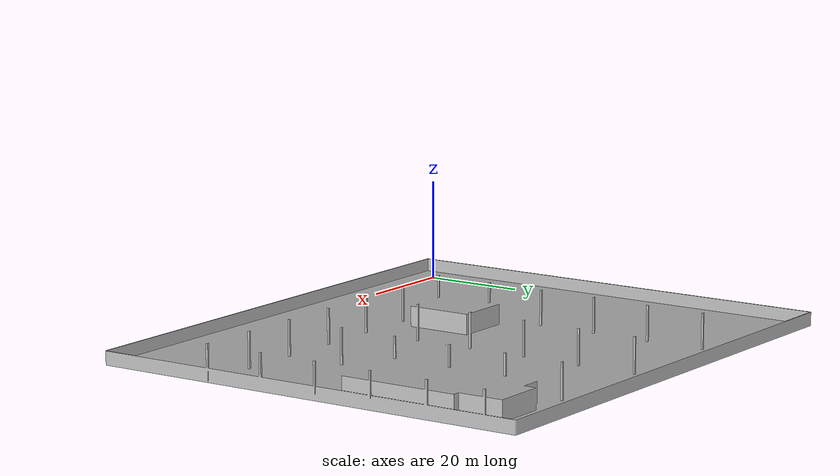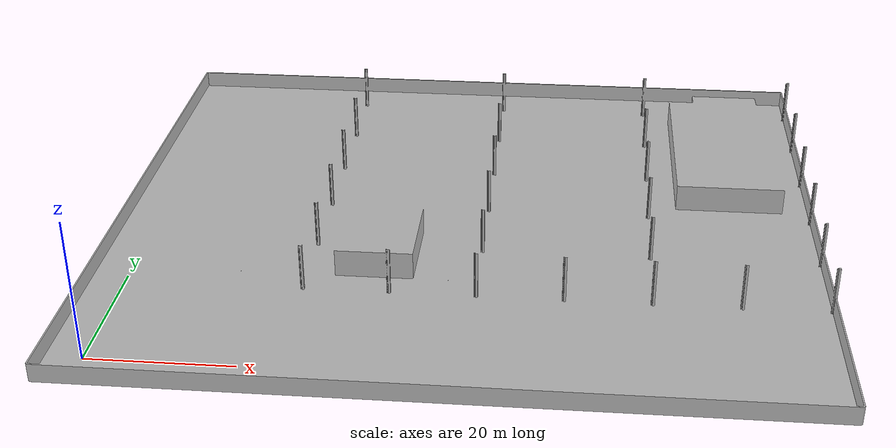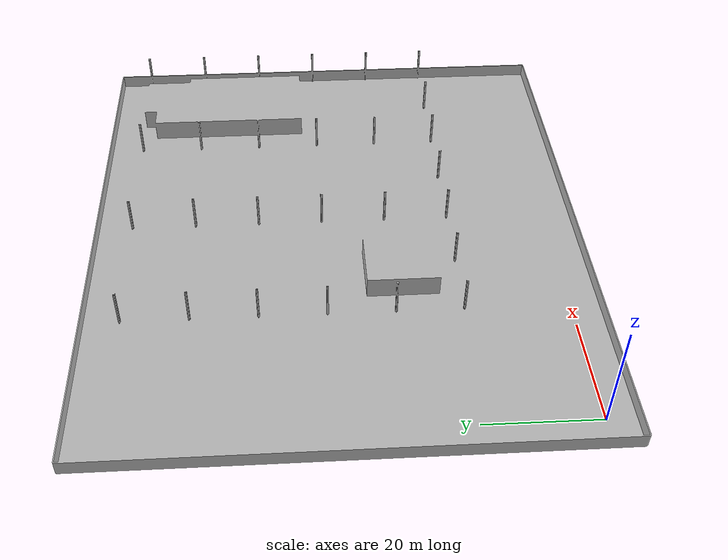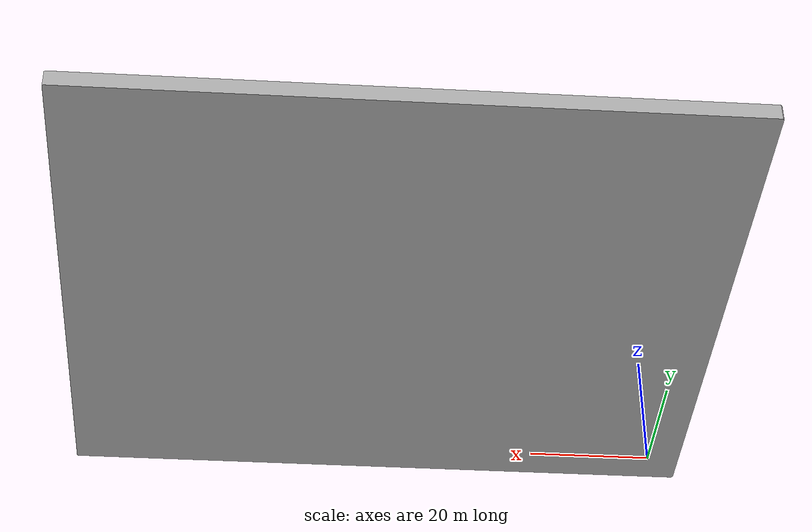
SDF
<?xml version="1.0"?>
<sdf version="1.4">

  <model name="TOFAS">

    <static>true</static>

    <link name="factory_structure">

      <pose>0 0 0 0 0 0</pose>

      <collision name="walls_collision">
        <geometry>
          <mesh>
            <uri>model://walls/meshes/TOFAS_without_markets.dae</uri>
          </mesh>
        </geometry>
      </collision>

      <visual name="walls_visual">
        <geometry>
          <mesh>
            <uri>model://walls/meshes/TOFAS_without_markets.dae</uri>
          </mesh>
        </geometry>

      </visual>

    </link>

  </model>
</sdf>
